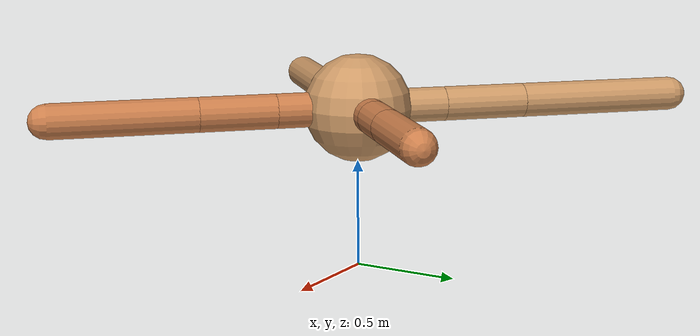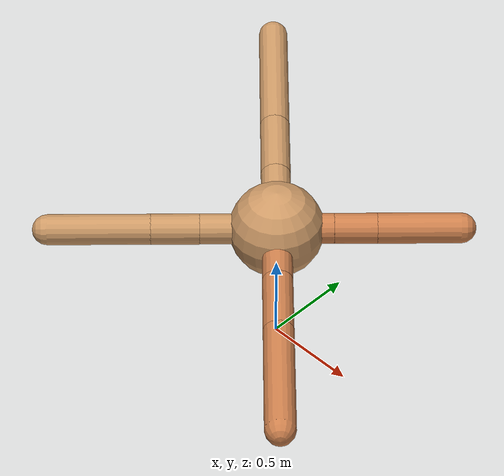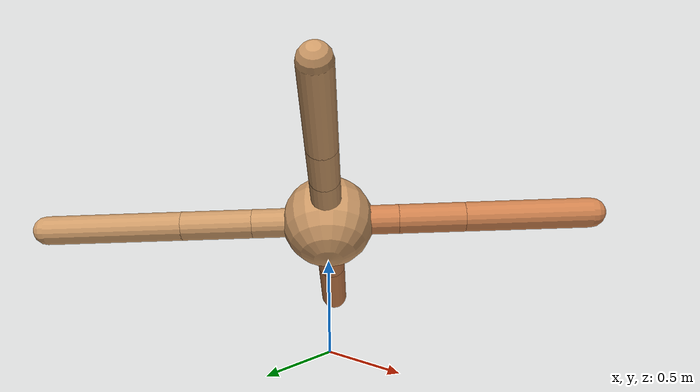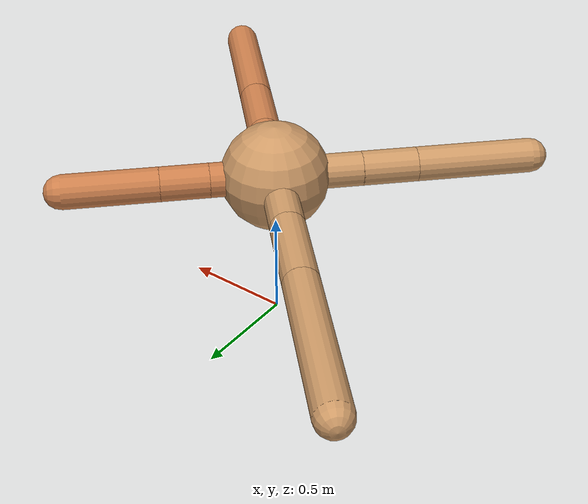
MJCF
<mujoco model="ant">
  <compiler angle="degree" coordinate="local" inertiafromgeom="true" />
  <option integrator="RK4" timestep="0.01" />
  <custom>
    <numeric data="0.0 0.0 0.55 1.0 0.0 0.0 0.0 0.0 1.0 0.0 -1.0 0.0 -1.0 0.0 1.0" name="init_qpos" />
  </custom>
  <default>
    <joint armature="1" damping="1" limited="true" />
    <geom conaffinity="0" condim="3" density="5.0" friction="1.5 0.1 0.1" margin="0.01" rgba="0.8 0.6 0.4 1" />
  </default>
  <worldbody>
    <body name="torso" pos="0 0 0.75">
      <geom name="torso_geom" pos="0 0 0" size="0.25" type="sphere" />

      <body name="front_left_leg" pos="0 0 0">
        <geom fromto="0.0 0.0 0.0 0.21116293984001447 0.21116293984001447 0.0" name="aux_1_geom" size="0.08" type="capsule" rgba=".8 .5 .3 1" />
        <body name="aux_1" pos="0.21116293984001447 0.21116293984001447 0.0">
          <joint axis="0 0 1" name="hip_1" pos="0.0 0.0 0.0" range="-40 40" type="hinge" />
          <geom fromto="0.0 0.0 0.0 0.15850989298195686 0.15850989298195686 0.0" name="left_leg_geom" size="0.08" type="capsule" rgba=".8 .5 .3 1" />
          <body pos="0.15850989298195686 0.15850989298195686 0.0" name="front_left_foot">
            <joint axis="-1 1 0" name="ankle_1" pos="0.0 0.0 0.0" range="30 100" type="hinge" />
            <geom fromto="0.0 0.0 0.0 0.30879529788987675 0.30879529788987675 0.0" name="left_ankle_geom" size="0.08" type="capsule" rgba=".8 .5 .3 1" />
          </body>
        </body>
      </body>
      <body name="front_right_leg" pos="0 0 0">
        <geom fromto="0.0 0.0 0.0 -0.29312176502631787 0.29312176502631787 0.0" name="aux_2_geom" size="0.08" type="capsule" />
        <body name="aux_2" pos="-0.29312176502631787 0.29312176502631787 0.0">
          <joint axis="0 0 1" name="hip_2" pos="0.0 0.0 0.0" range="-40 40" type="hinge" />
          <geom fromto="0.0 0.0 0.0 -0.27683851759747596 0.27683851759747596 0.0" name="right_leg_geom" size="0.08" type="capsule" />
          <body pos="-0.27683851759747596 0.27683851759747596 0.0" name="front_right_foot">
            <joint axis="1 1 0" name="ankle_2" pos="0.0 0.0 0.0" range="-100 -30" type="hinge" />
            <geom fromto="0.0 0.0 0.0 -0.5416502962448713 0.5416502962448713 0.0" name="right_ankle_geom" size="0.08" type="capsule" />
          </body>
        </body>
      </body>
      <body name="left_back_leg" pos="0 0 0">
        <geom fromto="0.0 0.0 0.0 -0.2826118074120252 -0.2826118074120252 0.0" name="aux_3_geom" size="0.08" type="capsule" />
        <body name="aux_3" pos="-0.2826118074120252 -0.2826118074120252 0.0">
          <joint axis="0 0 1" name="hip_3" pos="0.0 0.0 0.0" range="-40 40" type="hinge" />
          <geom fromto="0.0 0.0 0.0 -0.18028158343490414 -0.18028158343490414 0.0" name="back_leg_geom" size="0.08" type="capsule" />
          <body pos="-0.18028158343490414 -0.18028158343490414 0.0" name="left_back_foot">
            <joint axis="-1 1 0" name="ankle_3" pos="0.0 0.0 0.0" range="-100 -30" type="hinge" />
            <geom fromto="0.0 0.0 0.0 -0.38069700332812195 -0.38069700332812195 0.0" name="third_ankle_geom" size="0.08" type="capsule" />
          </body>
        </body>
      </body>
      <body name="right_back_leg" pos="0 0 0">
        <geom fromto="0.0 0.0 0.0 0.27179811489020006 -0.27179811489020006 0.0" name="aux_4_geom" size="0.08" type="capsule" rgba=".8 .5 .3 1" />
        <body name="aux_4" pos="0.27179811489020006 -0.27179811489020006 0.0">
          <joint axis="0 0 1" name="hip_4" pos="0.0 0.0 0.0" range="-40 40" type="hinge" />
          <geom fromto="0.0 0.0 0.0 0.251175154678276 -0.251175154678276 0.0" name="rightback_leg_geom" size="0.08" type="capsule" rgba=".8 .5 .3 1" />
          <body pos="0.251175154678276 -0.251175154678276 0.0" name="right_back_foot">
            <joint axis="1 1 0" name="ankle_4" pos="0.0 0.0 0.0" range="30 100" type="hinge" />
            <geom fromto="0.0 0.0 0.0 0.4704268690561554 -0.4704268690561554 0.0" name="fourth_ankle_geom" size="0.08" type="capsule" rgba=".8 .5 .3 1" />
          </body>
        </body>
      </body>
    </body>
  </worldbody>
  <actuator>
    <motor ctrllimited="true" ctrlrange="-1.0 1.0" joint="hip_4" gear="150" />
    <motor ctrllimited="true" ctrlrange="-1.0 1.0" joint="ankle_4" gear="150" />
    <motor ctrllimited="true" ctrlrange="-1.0 1.0" joint="hip_1" gear="150" />
    <motor ctrllimited="true" ctrlrange="-1.0 1.0" joint="ankle_1" gear="150" />
    <motor ctrllimited="true" ctrlrange="-1.0 1.0" joint="hip_2" gear="150" />
    <motor ctrllimited="true" ctrlrange="-1.0 1.0" joint="ankle_2" gear="150" />
    <motor ctrllimited="true" ctrlrange="-1.0 1.0" joint="hip_3" gear="150" />
    <motor ctrllimited="true" ctrlrange="-1.0 1.0" joint="ankle_3" gear="150" />
  </actuator>
</mujoco>
